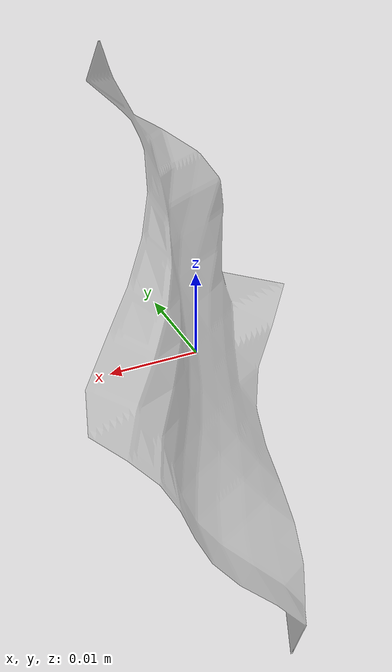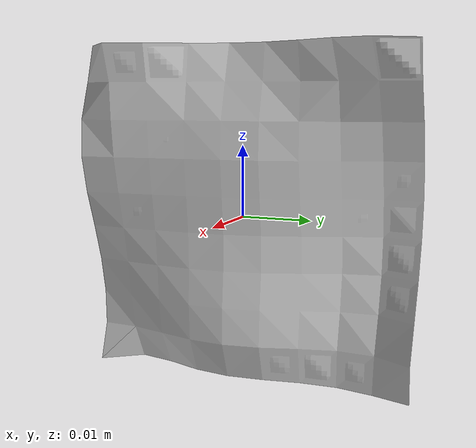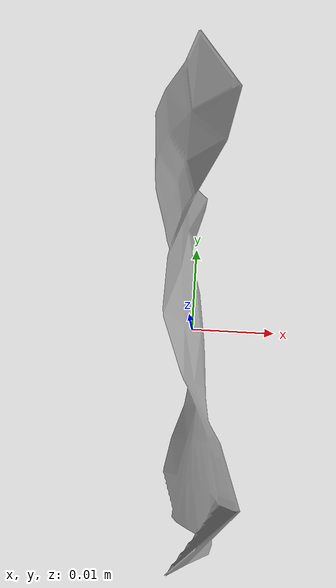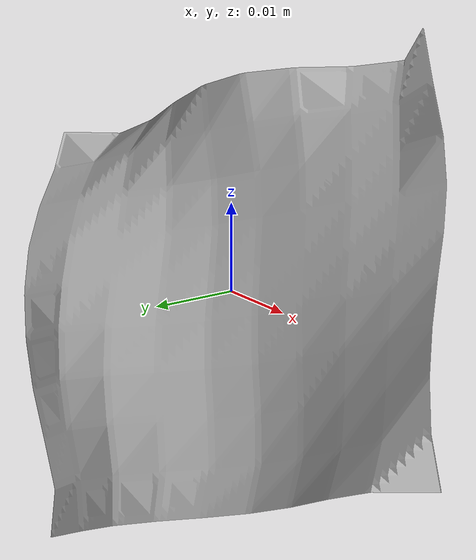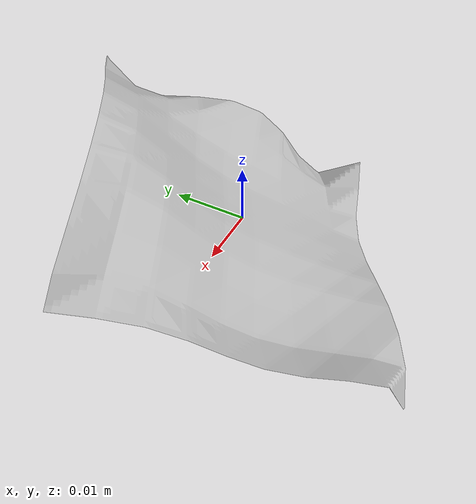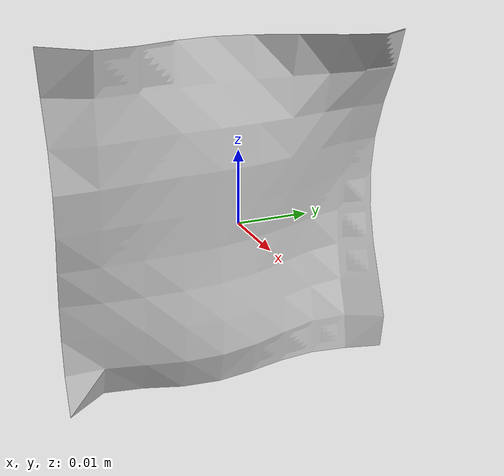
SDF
<?xml version='1.0'?>
<sdf version='1.6'>
  <model name="ID2_130">
  <static>true</static>
    <link name="link">
      <collision name="collision">
        <geometry>
          <mesh>
            <uri>model://test/meshes/ID2_130.dae</uri>
          </mesh>
        </geometry>
      </collision>

      <visual name='visual'>
        <geometry>
          <mesh>
            <uri>model://ID2_130/meshes/ID2_130.dae</uri>
          </mesh>
        </geometry>
      </visual>
    </link>

    </model>
  </sdf>
